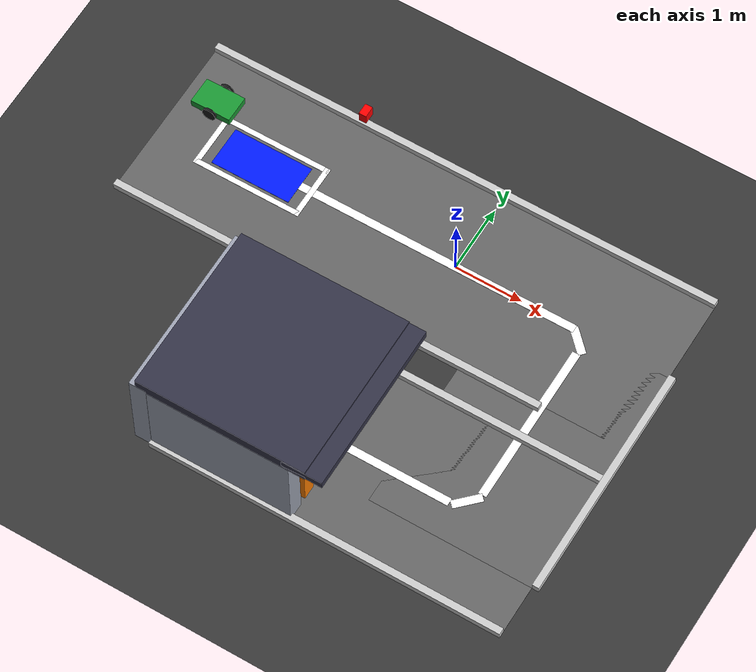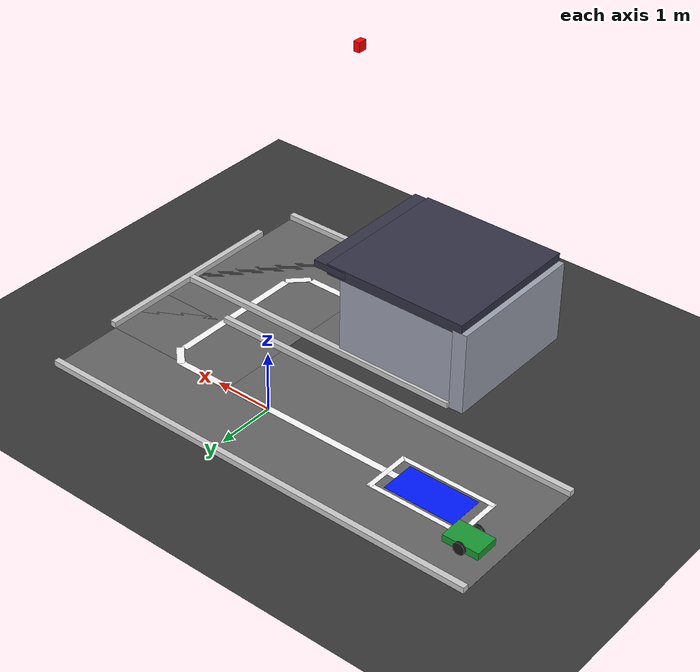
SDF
<?xml version="1.0" ?>
<sdf version="1.8">
  <world name="carwash_world">

    <!-- gz-sim 8 필수 시스템 플러그인 -->
    <plugin filename="gz-sim8-physics-system" name="gz::sim::systems::Physics"/>
    <plugin filename="gz-sim8-user-commands-system" name="gz::sim::systems::UserCommands"/>
    <plugin filename="gz-sim8-scene-broadcaster-system" name="gz::sim::systems::SceneBroadcaster"/>
    <plugin filename="gz-sim8-sensors-system" name="gz::sim::systems::Sensors">
      <render_engine>ogre2</render_engine>
    </plugin>

    <!-- 조명 -->
    <light name="sun" type="directional">
      <cast_shadows>true</cast_shadows>
      <pose>0 0 10 0 0 0</pose>
      <diffuse>0.9 0.9 0.9 1</diffuse>
      <specular>0.3 0.3 0.3 1</specular>
      <direction>-0.5 0.1 -0.9</direction>
    </light>

    <!-- 배경 지면 (어두운 회색) -->
    <model name="ground">
      <static>true</static>
      <link name="link">
        <collision name="collision">
          <geometry><plane><normal>0 0 1</normal><size>50 30</size></plane></geometry>
        </collision>
        <visual name="visual">
          <geometry><plane><normal>0 0 1</normal><size>50 30</size></plane></geometry>
          <material>
            <ambient>0.22 0.22 0.22 1</ambient>
            <diffuse>0.22 0.22 0.22 1</diffuse>
          </material>
        </visual>
      </link>
    </model>

    <!-- ====== 도로면 (세 구간 + 코너) ====== -->
    <!-- Seg1: 동쪽 직선 (y=0 centerline, x=-4.5~3.2) -->
    <model name="road_seg1">
      <static>true</static>
      <pose>-0.65 0 0.002 0 0 0</pose>
      <link name="link">
        <visual name="visual">
          <geometry><box><size>7.7 2.4 0.004</size></box></geometry>
          <material>
            <ambient>0.40 0.40 0.40 1</ambient>
            <diffuse>0.40 0.40 0.40 1</diffuse>
            <emissive>0.05 0.05 0.05 1</emissive>
          </material>
        </visual>
      </link>
    </model>

    <!-- Seg2: 남쪽 직선 (x=2 centerline, y=0~-3.5) -->
    <model name="road_seg2">
      <static>true</static>
      <pose>2 -1.75 0.002 0 0 0</pose>
      <link name="link">
        <visual name="visual">
          <geometry><box><size>2.4 3.5 0.004</size></box></geometry>
          <material>
            <ambient>0.40 0.40 0.40 1</ambient>
            <diffuse>0.40 0.40 0.40 1</diffuse>
            <emissive>0.05 0.05 0.05 1</emissive>
          </material>
        </visual>
      </link>
    </model>

    <!-- Seg3: 서쪽 직선 (y=-3 centerline, x=-2~3.2) -->
    <model name="road_seg3">
      <static>true</static>
      <pose>0.6 -3 0.002 0 0 0</pose>
      <link name="link">
        <visual name="visual">
          <geometry><box><size>5.2 2.4 0.004</size></box></geometry>
          <material>
            <ambient>0.40 0.40 0.40 1</ambient>
            <diffuse>0.40 0.40 0.40 1</diffuse>
            <emissive>0.05 0.05 0.05 1</emissive>
          </material>
        </visual>
      </link>
    </model>

    <!-- ====== 도로 경계 (연석) ====== -->
    <!-- Seg1 북쪽 경계 (y=1.2) -->
    <model name="curb_seg1_n">
      <static>true</static>
      <pose>-0.65 1.25 0.05 0 0 0</pose>
      <link name="link">
        <visual name="visual">
          <geometry><box><size>7.7 0.1 0.1</size></box></geometry>
          <material>
            <ambient>0.8 0.8 0.8 1</ambient>
            <diffuse>0.8 0.8 0.8 1</diffuse>
            <emissive>0.1 0.1 0.1 1</emissive>
          </material>
        </visual>
        <collision name="collision">
          <geometry><box><size>7.7 0.1 0.1</size></box></geometry>
        </collision>
      </link>
    </model>
    <!-- Seg1 남쪽 경계 (y=-1.2, 코너 전까지) -->
    <model name="curb_seg1_s">
      <static>true</static>
      <pose>-1.25 -1.25 0.05 0 0 0</pose>
      <link name="link">
        <visual name="visual">
          <geometry><box><size>6.5 0.1 0.1</size></box></geometry>
          <material>
            <ambient>0.8 0.8 0.8 1</ambient>
            <diffuse>0.8 0.8 0.8 1</diffuse>
            <emissive>0.1 0.1 0.1 1</emissive>
          </material>
        </visual>
        <collision name="collision">
          <geometry><box><size>6.5 0.1 0.1</size></box></geometry>
        </collision>
      </link>
    </model>
    <!-- Seg2 동쪽 경계 (x=3.2) -->
    <model name="curb_seg2_e">
      <static>true</static>
      <pose>3.25 -1.75 0.05 0 0 0</pose>
      <link name="link">
        <visual name="visual">
          <geometry><box><size>0.1 3.5 0.1</size></box></geometry>
          <material>
            <ambient>0.8 0.8 0.8 1</ambient>
            <diffuse>0.8 0.8 0.8 1</diffuse>
            <emissive>0.1 0.1 0.1 1</emissive>
          </material>
        </visual>
        <collision name="collision">
          <geometry><box><size>0.1 3.5 0.1</size></box></geometry>
        </collision>
      </link>
    </model>
    <!-- Seg3 북쪽 경계 (y=-1.8) -->
    <model name="curb_seg3_n">
      <static>true</static>
      <pose>0.6 -1.75 0.05 0 0 0</pose>
      <link name="link">
        <visual name="visual">
          <geometry><box><size>5.2 0.1 0.1</size></box></geometry>
          <material>
            <ambient>0.8 0.8 0.8 1</ambient>
            <diffuse>0.8 0.8 0.8 1</diffuse>
            <emissive>0.1 0.1 0.1 1</emissive>
          </material>
        </visual>
        <collision name="collision">
          <geometry><box><size>5.2 0.1 0.1</size></box></geometry>
        </collision>
      </link>
    </model>
    <!-- Seg3 남쪽 경계 (y=-4.2) -->
    <model name="curb_seg3_s">
      <static>true</static>
      <pose>0.6 -4.25 0.05 0 0 0</pose>
      <link name="link">
        <visual name="visual">
          <geometry><box><size>5.2 0.1 0.1</size></box></geometry>
          <material>
            <ambient>0.8 0.8 0.8 1</ambient>
            <diffuse>0.8 0.8 0.8 1</diffuse>
            <emissive>0.1 0.1 0.1 1</emissive>
          </material>
        </visual>
        <collision name="collision">
          <geometry><box><size>5.2 0.1 0.1</size></box></geometry>
        </collision>
      </link>
    </model>

    <!-- ====== 흰색 센터라인 마킹 ====== -->
    <!-- Seg1 centerline: x=-3.5~1.8, y=0 -->
    <model name="lane_seg1">
      <static>true</static>
      <pose>-0.85 0 0.006 0 0 0</pose>
      <link name="link">
        <visual name="visual">
          <geometry><box><size>5.3 0.12 0.003</size></box></geometry>
          <material>
            <ambient>1 1 1 1</ambient>
            <diffuse>1 1 1 1</diffuse>
            <emissive>0.9 0.9 0.9 1</emissive>
          </material>
        </visual>
      </link>
    </model>

    <!-- Corner 1 대각선 (1.9, -0.15): Seg1→Seg2 연결 -->
    <model name="lane_corner1">
      <static>true</static>
      <pose>1.92 -0.13 0.006 0 0 -0.7854</pose>
      <link name="link">
        <visual name="visual">
          <geometry><box><size>0.42 0.12 0.003</size></box></geometry>
          <material>
            <ambient>1 1 1 1</ambient>
            <diffuse>1 1 1 1</diffuse>
            <emissive>0.9 0.9 0.9 1</emissive>
          </material>
        </visual>
      </link>
    </model>

    <!-- Seg2 centerline: x=2, y=-0.3~-2.7 -->
    <model name="lane_seg2">
      <static>true</static>
      <pose>2 -1.5 0.006 0 0 0</pose>
      <link name="link">
        <visual name="visual">
          <geometry><box><size>0.12 2.4 0.003</size></box></geometry>
          <material>
            <ambient>1 1 1 1</ambient>
            <diffuse>1 1 1 1</diffuse>
            <emissive>0.9 0.9 0.9 1</emissive>
          </material>
        </visual>
      </link>
    </model>

    <!-- Corner 2 대각선 (1.88, -2.87): Seg2→Seg3 연결 -->
    <model name="lane_corner2">
      <static>true</static>
      <pose>1.88 -2.87 0.006 0 0 -2.3562</pose>
      <link name="link">
        <visual name="visual">
          <geometry><box><size>0.42 0.12 0.003</size></box></geometry>
          <material>
            <ambient>1 1 1 1</ambient>
            <diffuse>1 1 1 1</diffuse>
            <emissive>0.9 0.9 0.9 1</emissive>
          </material>
        </visual>
      </link>
    </model>

    <!-- Seg3 centerline: y=-3, x=1.7~0.2 -->
    <model name="lane_seg3">
      <static>true</static>
      <pose>0.95 -3 0.006 0 0 0</pose>
      <link name="link">
        <visual name="visual">
          <geometry><box><size>1.5 0.12 0.003</size></box></geometry>
          <material>
            <ambient>1 1 1 1</ambient>
            <diffuse>1 1 1 1</diffuse>
            <emissive>0.9 0.9 0.9 1</emissive>
          </material>
        </visual>
      </link>
    </model>

    <!-- ====== Phase 1: 정차구역 마커 (파란색) ====== -->
    <model name="parking_marker">
      <static>true</static>
      <pose>-3 0 0.006 0 0 0</pose>
      <link name="link">
        <visual name="visual">
          <geometry><box><size>1.2 0.6 0.004</size></box></geometry>
          <material>
            <ambient>0 0.1 1 1</ambient>
            <diffuse>0 0.1 1 1</diffuse>
            <emissive>0 0 0.7 1</emissive>
          </material>
        </visual>
        <collision name="collision">
          <geometry><box><size>1.2 0.6 0.004</size></box></geometry>
        </collision>
      </link>
    </model>
    <!-- 정차구역 테두리 (흰색) -->
    <model name="parking_border_n">
      <static>true</static>
      <pose>-3 0.38 0.006 0 0 0</pose>
      <link name="link">
        <visual name="visual">
          <geometry><box><size>1.6 0.08 0.004</size></box></geometry>
          <material><ambient>1 1 1 1</ambient><diffuse>1 1 1 1</diffuse><emissive>0.6 0.6 0.6 1</emissive></material>
        </visual>
      </link>
    </model>
    <model name="parking_border_s">
      <static>true</static>
      <pose>-3 -0.38 0.006 0 0 0</pose>
      <link name="link">
        <visual name="visual">
          <geometry><box><size>1.6 0.08 0.004</size></box></geometry>
          <material><ambient>1 1 1 1</ambient><diffuse>1 1 1 1</diffuse><emissive>0.6 0.6 0.6 1</emissive></material>
        </visual>
      </link>
    </model>
    <model name="parking_border_e">
      <static>true</static>
      <pose>-2.22 0 0.006 0 0 0</pose>
      <link name="link">
        <visual name="visual">
          <geometry><box><size>0.08 0.84 0.004</size></box></geometry>
          <material><ambient>1 1 1 1</ambient><diffuse>1 1 1 1</diffuse><emissive>0.6 0.6 0.6 1</emissive></material>
        </visual>
      </link>
    </model>
    <model name="parking_border_w">
      <static>true</static>
      <pose>-3.78 0 0.006 0 0 0</pose>
      <link name="link">
        <visual name="visual">
          <geometry><box><size>0.08 0.84 0.004</size></box></geometry>
          <material><ambient>1 1 1 1</ambient><diffuse>1 1 1 1</diffuse><emissive>0.6 0.6 0.6 1</emissive></material>
        </visual>
      </link>
    </model>

    <!-- ====== 세차장 건물 구조 ====== -->
    <!-- 북쪽 벽 (y=-1.8) -->
    <model name="carwash_wall_n">
      <static>true</static>
      <pose>-1 -1.88 0.7 0 0 0</pose>
      <link name="link">
        <visual name="visual">
          <geometry><box><size>2.2 0.25 1.4</size></box></geometry>
          <material>
            <ambient>0.62 0.64 0.70 1</ambient>
            <diffuse>0.62 0.64 0.70 1</diffuse>
            <emissive>0.05 0.05 0.08 1</emissive>
          </material>
        </visual>
        <collision name="collision">
          <geometry><box><size>2.2 0.25 1.4</size></box></geometry>
        </collision>
      </link>
    </model>
    <!-- 남쪽 벽 (y=-4.2) -->
    <model name="carwash_wall_s">
      <static>true</static>
      <pose>-1 -4.12 0.7 0 0 0</pose>
      <link name="link">
        <visual name="visual">
          <geometry><box><size>2.2 0.25 1.4</size></box></geometry>
          <material>
            <ambient>0.62 0.64 0.70 1</ambient>
            <diffuse>0.62 0.64 0.70 1</diffuse>
            <emissive>0.05 0.05 0.08 1</emissive>
          </material>
        </visual>
        <collision name="collision">
          <geometry><box><size>2.2 0.25 1.4</size></box></geometry>
        </collision>
      </link>
    </model>
    <!-- 뒷벽 (x=-2.1) -->
    <model name="carwash_wall_back">
      <static>true</static>
      <pose>-2.12 -3 0.7 0 0 0</pose>
      <link name="link">
        <visual name="visual">
          <geometry><box><size>0.25 2.5 1.4</size></box></geometry>
          <material>
            <ambient>0.62 0.64 0.70 1</ambient>
            <diffuse>0.62 0.64 0.70 1</diffuse>
            <emissive>0.05 0.05 0.08 1</emissive>
          </material>
        </visual>
        <collision name="collision">
          <geometry><box><size>0.25 2.5 1.4</size></box></geometry>
        </collision>
      </link>
    </model>
    <!-- 지붕 (어두운 색) -->
    <model name="carwash_roof">
      <static>true</static>
      <pose>-0.9 -3 1.45 0 0 0</pose>
      <link name="link">
        <visual name="visual">
          <geometry><box><size>2.5 2.5 0.18</size></box></geometry>
          <material>
            <ambient>0.20 0.20 0.28 1</ambient>
            <diffuse>0.20 0.20 0.28 1</diffuse>
            <emissive>0.02 0.02 0.05 1</emissive>
          </material>
        </visual>
        <collision name="collision">
          <geometry><box><size>2.5 2.5 0.18</size></box></geometry>
        </collision>
      </link>
    </model>
    <!-- 입구 처마 (캐노피) -->
    <model name="carwash_canopy">
      <static>true</static>
      <pose>0.3 -3 1.45 0 0 0</pose>
      <link name="link">
        <visual name="visual">
          <geometry><box><size>0.6 2.5 0.12</size></box></geometry>
          <material>
            <ambient>0.20 0.20 0.28 1</ambient>
            <diffuse>0.20 0.20 0.28 1</diffuse>
            <emissive>0.02 0.02 0.05 1</emissive>
          </material>
        </visual>
      </link>
    </model>

    <!-- ====== Phase 3: 세차장 입구 기둥 (주황색) ====== -->
    <!-- 북쪽 기둥: x=0, y=-2.2 -->
    <model name="pillar_north">
      <static>true</static>
      <pose>0 -2.2 0.65 0 0 0</pose>
      <link name="link">
        <collision name="collision">
          <geometry><box><size>0.2 0.2 1.3</size></box></geometry>
        </collision>
        <visual name="visual">
          <geometry><box><size>0.2 0.2 1.3</size></box></geometry>
          <material>
            <ambient>1 0.5 0 1</ambient>
            <diffuse>1 0.5 0 1</diffuse>
            <emissive>0.9 0.35 0 1</emissive>
          </material>
        </visual>
      </link>
    </model>
    <!-- 남쪽 기둥: x=0, y=-3.8 -->
    <model name="pillar_south">
      <static>true</static>
      <pose>0 -3.8 0.65 0 0 0</pose>
      <link name="link">
        <collision name="collision">
          <geometry><box><size>0.2 0.2 1.3</size></box></geometry>
        </collision>
        <visual name="visual">
          <geometry><box><size>0.2 0.2 1.3</size></box></geometry>
          <material>
            <ambient>1 0.5 0 1</ambient>
            <diffuse>1 0.5 0 1</diffuse>
            <emissive>0.9 0.35 0 1</emissive>
          </material>
        </visual>
      </link>
    </model>
    <!-- 기둥 상단 연결 바 -->
    <model name="pillar_crossbar">
      <static>true</static>
      <pose>0 -3 1.35 0 0 0</pose>
      <link name="link">
        <visual name="visual">
          <geometry><box><size>0.15 1.6 0.12</size></box></geometry>
          <material>
            <ambient>0.8 0.4 0 1</ambient>
            <diffuse>0.8 0.4 0 1</diffuse>
            <emissive>0.5 0.2 0 1</emissive>
          </material>
        </visual>
      </link>
    </model>

    <!-- ====== 탑뷰 카메라 ====== -->
    <!-- U자 경로 전체 조감: 중심 (-0.4, -1.5), z=5.5 -->
    <model name="overhead_cam_model">
      <static>true</static>
      <pose>-0.4 -1.5 5.5 0 1.5707963 0</pose>
      <link name="link">
        <visual name="visual">
          <geometry><box><size>0.15 0.15 0.1</size></box></geometry>
          <material><ambient>1 0 0 1</ambient><diffuse>1 0 0 1</diffuse></material>
        </visual>
        <sensor name="overhead_camera" type="camera">
          <always_on>true</always_on>
          <update_rate>10</update_rate>
          <camera>
            <horizontal_fov>1.5708</horizontal_fov>
            <image>
              <width>640</width>
              <height>480</height>
              <format>R8G8B8</format>
            </image>
            <clip><near>0.5</near><far>100</far></clip>
          </camera>
          <topic>/overhead/image_raw</topic>
        </sensor>
      </link>
    </model>

    <!-- ====== 로봇 차량 (U자 경로 시작점) ====== -->
    <!-- 시작: x=-4, y=0.5 (파킹 마커에서 0.5m 북쪽 오프셋) -->
    <model name="robot_car">
      <pose>-4 0.5 0.1 0 0 0</pose>

      <link name="base_link">
        <inertial>
          <mass>5.0</mass>
          <inertia>
            <ixx>0.1</ixx><iyy>0.2</iyy><izz>0.2</izz>
            <ixy>0</ixy><ixz>0</ixz><iyz>0</iyz>
          </inertia>
        </inertial>
        <collision name="collision">
          <geometry><box><size>0.6 0.4 0.12</size></box></geometry>
        </collision>
        <visual name="visual">
          <geometry><box><size>0.6 0.4 0.12</size></box></geometry>
          <material>
            <ambient>0.1 0.6 0.2 1</ambient>
            <diffuse>0.1 0.6 0.2 1</diffuse>
            <emissive>0 0.1 0 1</emissive>
          </material>
        </visual>
      </link>

      <link name="left_wheel">
        <pose>0 0.22 0 -1.5707963 0 0</pose>
        <inertial>
          <mass>0.3</mass>
          <inertia><ixx>0.005</ixx><iyy>0.005</iyy><izz>0.005</izz><ixy>0</ixy><ixz>0</ixz><iyz>0</iyz></inertia>
        </inertial>
        <collision name="collision">
          <geometry><cylinder><radius>0.1</radius><length>0.04</length></cylinder></geometry>
        </collision>
        <visual name="visual">
          <geometry><cylinder><radius>0.1</radius><length>0.04</length></cylinder></geometry>
          <material><ambient>0.1 0.1 0.1 1</ambient><diffuse>0.1 0.1 0.1 1</diffuse></material>
        </visual>
      </link>

      <joint name="left_wheel_joint" type="revolute">
        <parent>base_link</parent>
        <child>left_wheel</child>
        <axis>
          <xyz>0 0 1</xyz>
          <limit><lower>-1e16</lower><upper>1e16</upper></limit>
        </axis>
      </joint>

      <link name="right_wheel">
        <pose>0 -0.22 0 -1.5707963 0 0</pose>
        <inertial>
          <mass>0.3</mass>
          <inertia><ixx>0.005</ixx><iyy>0.005</iyy><izz>0.005</izz><ixy>0</ixy><ixz>0</ixz><iyz>0</iyz></inertia>
        </inertial>
        <collision name="collision">
          <geometry><cylinder><radius>0.1</radius><length>0.04</length></cylinder></geometry>
        </collision>
        <visual name="visual">
          <geometry><cylinder><radius>0.1</radius><length>0.04</length></cylinder></geometry>
          <material><ambient>0.1 0.1 0.1 1</ambient><diffuse>0.1 0.1 0.1 1</diffuse></material>
        </visual>
      </link>

      <joint name="right_wheel_joint" type="revolute">
        <parent>base_link</parent>
        <child>right_wheel</child>
        <axis>
          <xyz>0 0 1</xyz>
          <limit><lower>-1e16</lower><upper>1e16</upper></limit>
        </axis>
      </joint>

      <!-- 카메라 링크 (전방 + 약간 하향) -->
      <link name="camera_link">
        <pose>0.35 0 0.18 0 0.3 0</pose>
        <sensor name="camera" type="camera">
          <always_on>true</always_on>
          <update_rate>30</update_rate>
          <camera>
            <horizontal_fov>1.047</horizontal_fov>
            <image>
              <width>640</width>
              <height>480</height>
              <format>R8G8B8</format>
            </image>
            <clip><near>0.1</near><far>100</far></clip>
          </camera>
          <topic>/camera/image_raw</topic>
        </sensor>
      </link>

      <joint name="camera_joint" type="fixed">
        <parent>base_link</parent>
        <child>camera_link</child>
      </joint>

      <plugin filename="gz-sim8-diff-drive-system" name="gz::sim::systems::DiffDrive">
        <left_joint>left_wheel_joint</left_joint>
        <right_joint>right_wheel_joint</right_joint>
        <wheel_separation>0.44</wheel_separation>
        <wheel_radius>0.1</wheel_radius>
        <topic>/cmd_vel</topic>
      </plugin>

    </model>

  </world>
</sdf>
